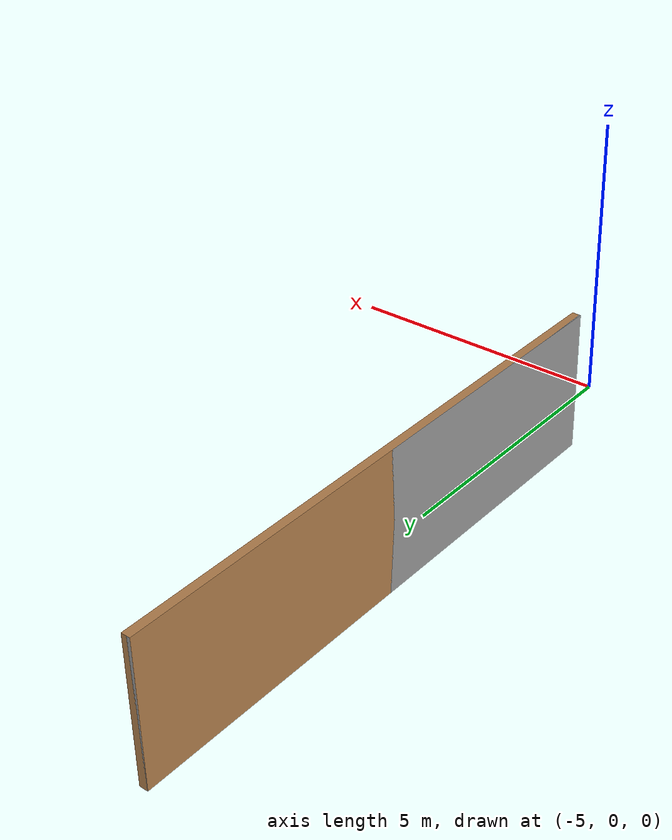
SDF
<?xml version='1.0'?>
<sdf version='1.5'>
  <model name='wall-10m-amodi'>
    <pose>-5.69919 6.81323 0 0 -0 0</pose>
    <link name='Wall_24'>
      <collision name='Wall_24_Collision'>
        <geometry>
          <box>
            <size>10 0.15 2.5</size>
          </box>
        </geometry>
        <pose>0 0 1.25 0 -0 0</pose>
      </collision>
      <visual name='Wall_24_Visual'>
        <pose>0 0 1.25 0 -0 0</pose>
        <geometry>
          <box>
            <size>10 0.15 2.5</size>
          </box>
        </geometry>
        <material>
          <script>
            <uri>file://media/materials/scripts/gazebo.material</uri>
            <name>Gazebo/Grey</name>
          </script>
          <ambient>1 1 1 1</ambient>
        </material>
      </visual>
      <pose>0 -0 0 0 0 -1.5708</pose>
    </link>
    <link name='Wall_25'>
      <collision name='Wall_25_Collision'>
        <geometry>
          <box>
            <size>10 0.15 2.5</size>
          </box>
        </geometry>
        <pose>0 0 1.25 0 -0 0</pose>
      </collision>
      <visual name='Wall_25_Visual'>
        <pose>0 0 1.25 0 -0 0</pose>
        <geometry>
          <box>
            <size>10 0.15 2.5</size>
          </box>
        </geometry>
        <material>
          <script>
            <uri>file://media/materials/scripts/gazebo.material</uri>
            <name>Gazebo/Wood</name>
          </script>
          <ambient>1 1 1 1</ambient>
        </material>
      </visual>
      <pose>0 -0 0 0 -0 1.5708</pose>
    </link>
    <static>1</static>
  </model>
</sdf>
